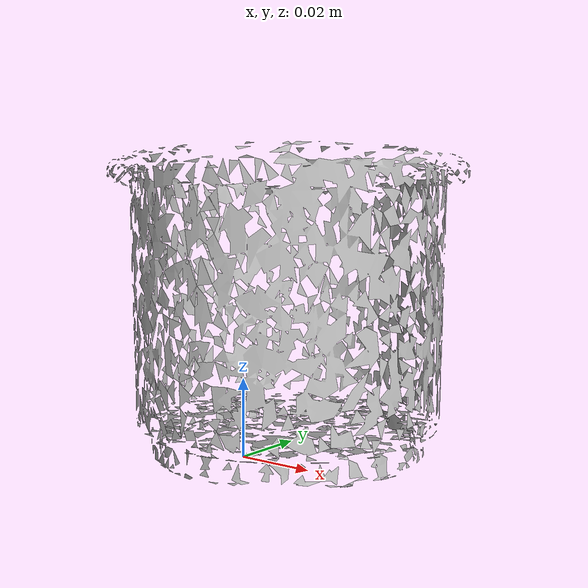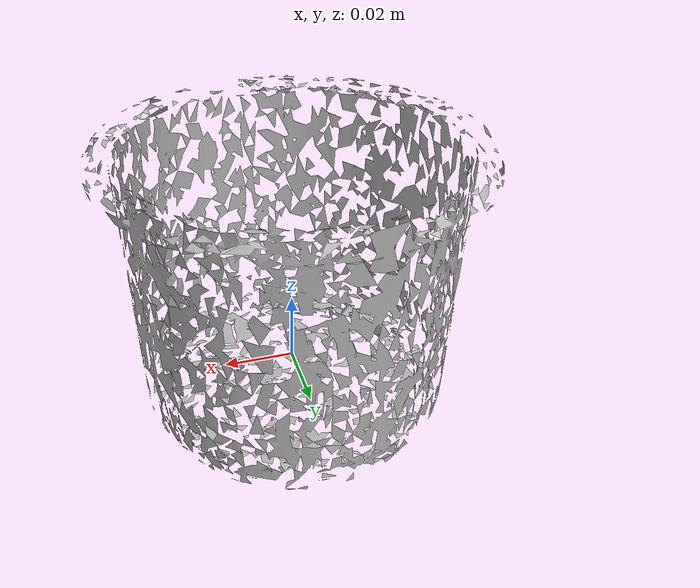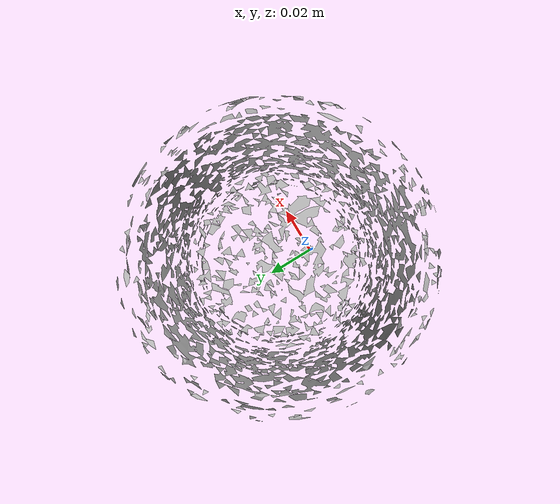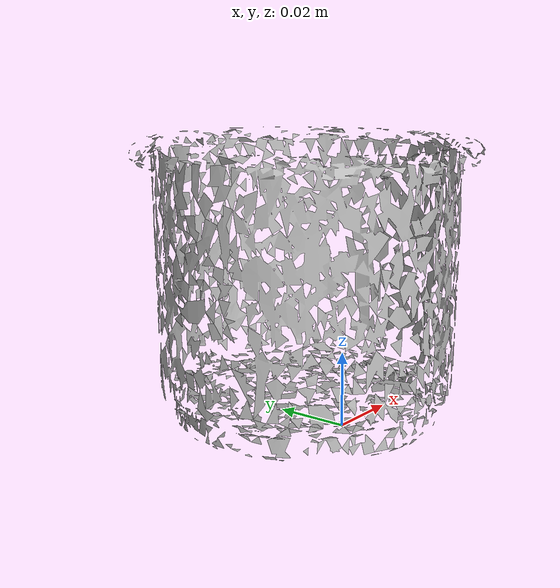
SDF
<?xml version='1.0'?>
<sdf version="1.4">
  <model name="h_cups">
    <static>false</static>
    <link name="link">
      <inertial>
        <pose>0.002535841918525972 0.014808556940255405 0.03593436586751651 -2.254207427973072 -1.504929262448424 -1.4597592720546608</pose>
        <mass>4.665322621017383e-05</mass>
        <inertia>
          <ixx>6.433750048180883e-08</ixx>
          <ixy>1.0441476930032584e-23</ixy>
          <ixz>2.5826279791028925e-24</ixz>
          <iyy>6.014406960726105e-08</iyy>
          <iyz>2.4143381970288404e-24</iyz>
          <izz>6.000056898209879e-08</izz>
        </inertia>
      </inertial>
      <collision name="collision">
        <geometry>
          <mesh>
            <!-- Use a downsampled mesh for collisions -->
            <uri>model://065-h_cups/downsampled.obj</uri>
	        </mesh>
        </geometry>
        <surface>
      </surface>
      </collision>
      <visual name="visual">
        <geometry>
          <mesh>
            <uri>model://065-h_cups/google_16k/textured.obj</uri>
	        </mesh>
        </geometry>
        <material>
          <script>
            <uri>model://065-h_cups/h_cups.material</uri>
            <name>h_cups</name>
          </script>
        </material>
      </visual>
    </link>
  </model>
</sdf>
